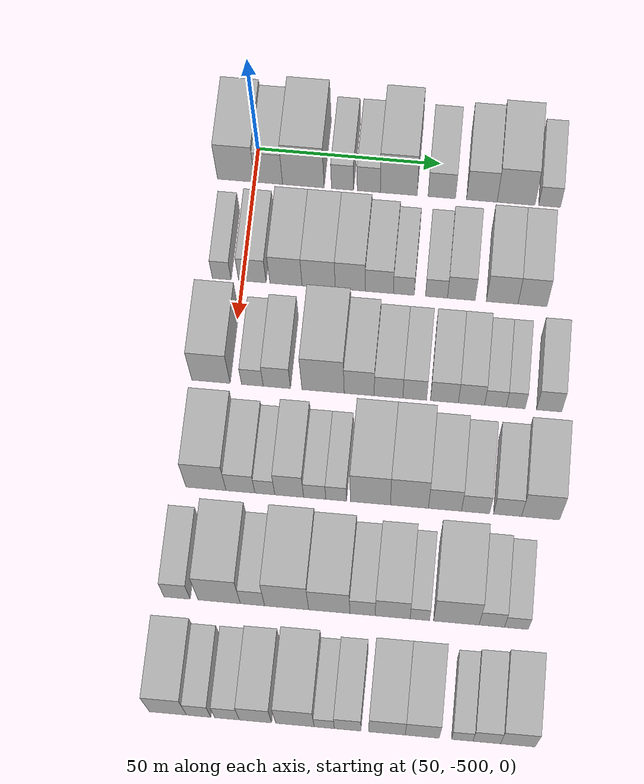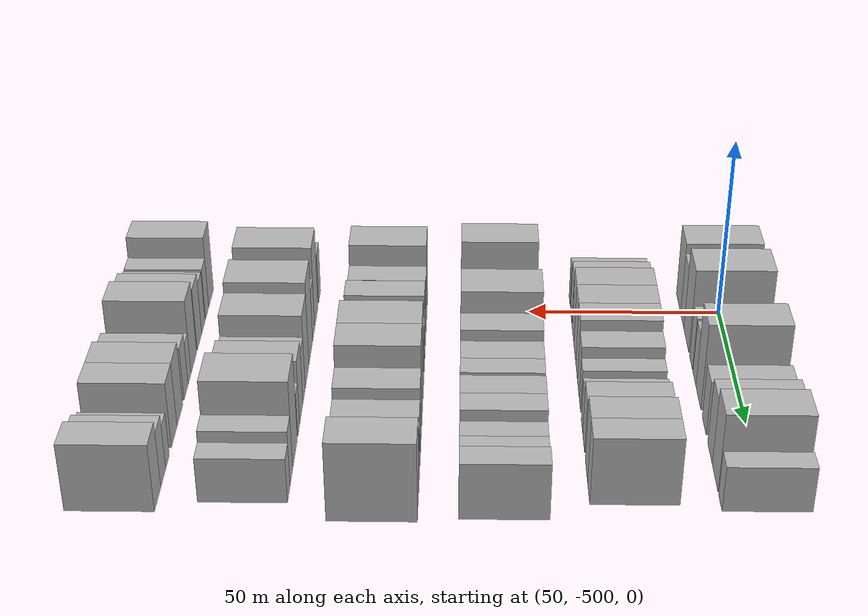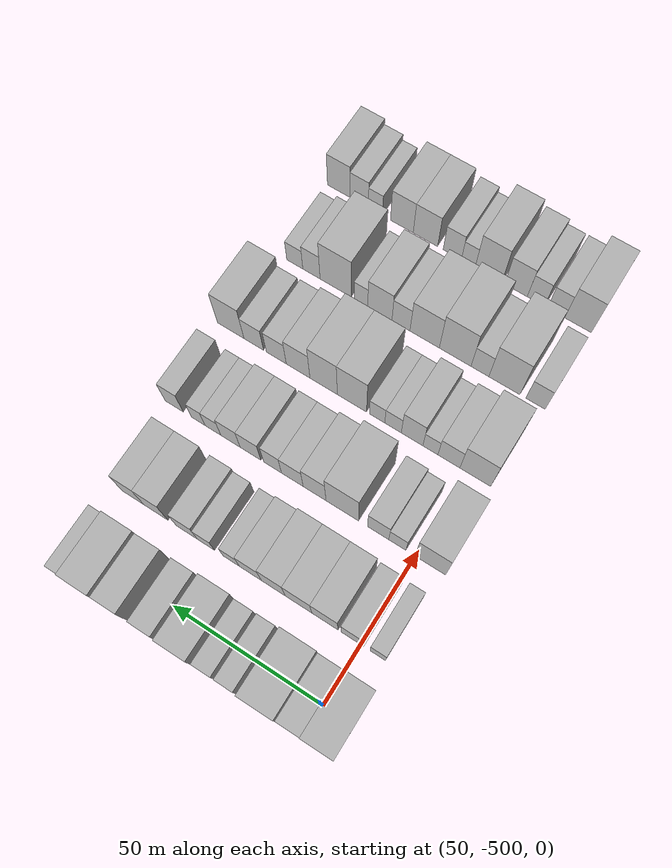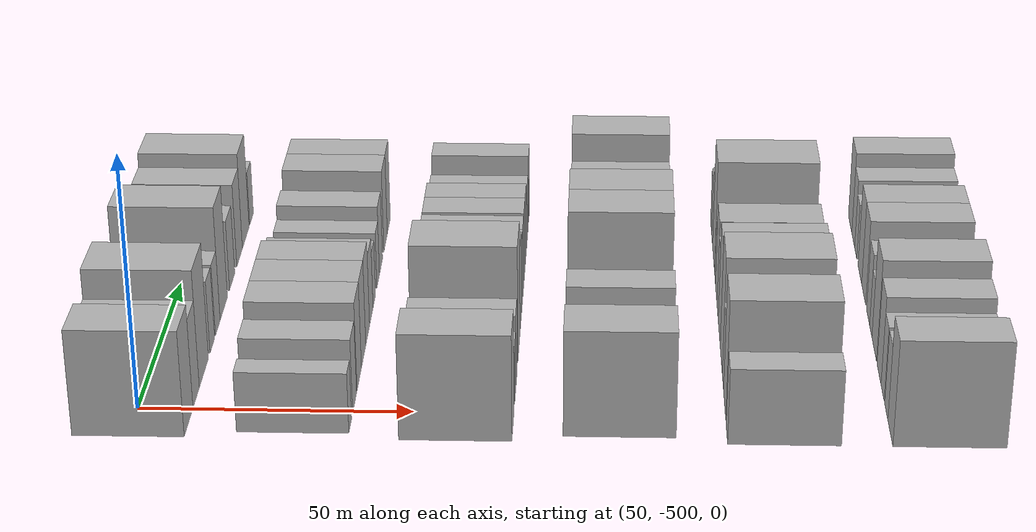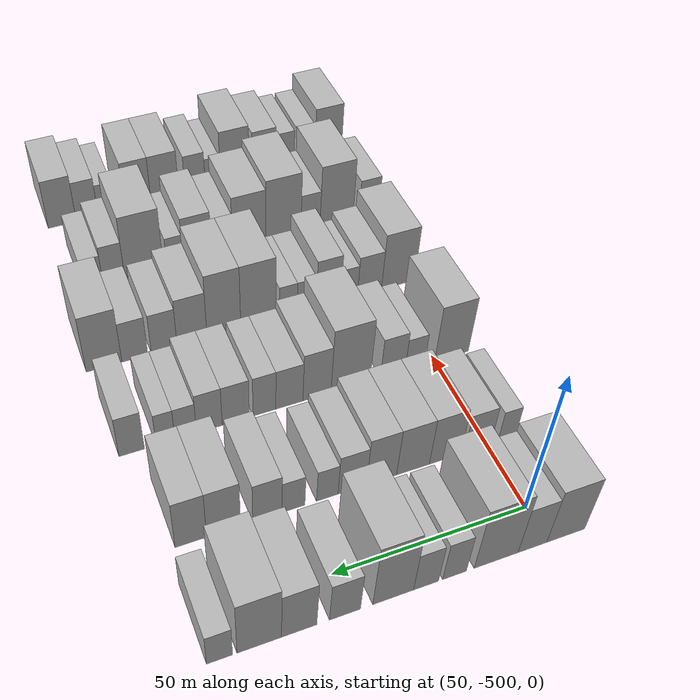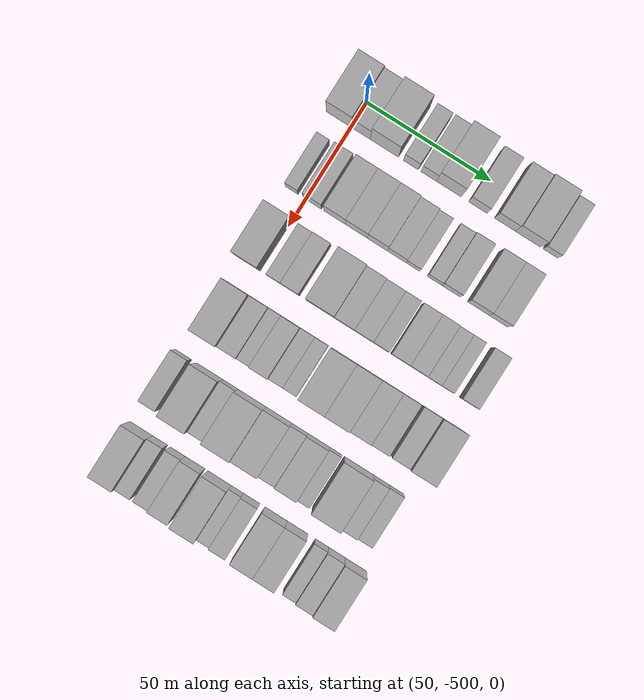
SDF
<sdf version="1.6">
 <world name="default">
  <model name="building_1">
   <static>1</static>
   <pose>50.0000 -504.9154 0 0.000000 0.000000 0.000000</pose>
   <link name="link">
    <pose>0 0 10.50 0 0 0</pose>
    <collision name="collision"><geometry><box><size>20.0000 10.1693 21.0000</size></box></geometry></collision>
    <visual name="visual">
     <cast_shadows>0</cast_shadows>
     <geometry><box><size>20.0000 10.1693 21.0000</size></box></geometry>
     <material>
      <script>
       <uri>model://HANNAS_wall/materials/scripts</uri>
       <uri>model://HANNAS_wall/materials/textures</uri>
       <name>vrc/HANNAS_wall</name>
      </script>
     </material>
    </visual>
   </link>
  </model>
  <model name="building_2">
   <static>1</static>
   <pose>50.0000 -496.0408 0 0.000000 0.000000 0.000000</pose>
   <link name="link">
    <pose>0 0 9.00 0 0 0</pose>
    <collision name="collision"><geometry><box><size>20.0000 7.5799 18.0000</size></box></geometry></collision>
    <visual name="visual">
     <cast_shadows>0</cast_shadows>
     <geometry><box><size>20.0000 7.5799 18.0000</size></box></geometry>
     <material>
      <script>
       <uri>model://HANNAS_wall/materials/scripts</uri>
       <uri>model://HANNAS_wall/materials/textures</uri>
       <name>vrc/HANNAS_wall</name>
      </script>
     </material>
    </visual>
   </link>
  </model>
  <model name="building_3">
   <static>1</static>
   <pose>50.0000 -486.5869 0 0.000000 0.000000 0.000000</pose>
   <link name="link">
    <pose>0 0 12.00 0 0 0</pose>
    <collision name="collision"><geometry><box><size>20.0000 11.3279 24.0000</size></box></geometry></collision>
    <visual name="visual">
     <cast_shadows>0</cast_shadows>
     <geometry><box><size>20.0000 11.3279 24.0000</size></box></geometry>
     <material>
      <script>
       <uri>model://HANNAS_wall/materials/scripts</uri>
       <uri>model://HANNAS_wall/materials/textures</uri>
       <name>vrc/HANNAS_wall</name>
      </script>
     </material>
    </visual>
   </link>
  </model>
  <model name="building_4">
   <static>1</static>
   <pose>50.0000 -475.9145 0 0.000000 0.000000 0.000000</pose>
   <link name="link">
    <pose>0 0 7.50 0 0 0</pose>
    <collision name="collision"><geometry><box><size>20.0000 6.0170 15.0000</size></box></geometry></collision>
    <visual name="visual">
     <cast_shadows>0</cast_shadows>
     <geometry><box><size>20.0000 6.0170 15.0000</size></box></geometry>
     <material>
      <script>
       <uri>model://HANNAS_wall/materials/scripts</uri>
       <uri>model://HANNAS_wall/materials/textures</uri>
       <name>vrc/HANNAS_wall</name>
      </script>
     </material>
    </visual>
   </link>
  </model>
  <model name="building_5">
   <static>1</static>
   <pose>50.0000 -468.7749 0 0.000000 0.000000 0.000000</pose>
   <link name="link">
    <pose>0 0 7.50 0 0 0</pose>
    <collision name="collision"><geometry><box><size>20.0000 6.2623 15.0000</size></box></geometry></collision>
    <visual name="visual">
     <cast_shadows>0</cast_shadows>
     <geometry><box><size>20.0000 6.2623 15.0000</size></box></geometry>
     <material>
      <script>
       <uri>model://HANNAS_wall/materials/scripts</uri>
       <uri>model://HANNAS_wall/materials/textures</uri>
       <name>vrc/HANNAS_wall</name>
      </script>
     </material>
    </visual>
   </link>
  </model>
  <model name="building_6">
   <static>1</static>
   <pose>50.0000 -460.6426 0 0.000000 0.000000 0.000000</pose>
   <link name="link">
    <pose>0 0 12.00 0 0 0</pose>
    <collision name="collision"><geometry><box><size>20.0000 10.0022 24.0000</size></box></geometry></collision>
    <visual name="visual">
     <cast_shadows>0</cast_shadows>
     <geometry><box><size>20.0000 10.0022 24.0000</size></box></geometry>
     <material>
      <script>
       <uri>model://HANNAS_wall/materials/scripts</uri>
       <uri>model://HANNAS_wall/materials/textures</uri>
       <name>vrc/HANNAS_wall</name>
      </script>
     </material>
    </visual>
   </link>
  </model>
  <model name="building_7">
   <static>1</static>
   <pose>50.0000 -448.9311 0 0.000000 0.000000 0.000000</pose>
   <link name="link">
    <pose>0 0 7.50 0 0 0</pose>
    <collision name="collision"><geometry><box><size>20.0000 7.4207 15.0000</size></box></geometry></collision>
    <visual name="visual">
     <cast_shadows>0</cast_shadows>
     <geometry><box><size>20.0000 7.4207 15.0000</size></box></geometry>
     <material>
      <script>
       <uri>model://HANNAS_wall/materials/scripts</uri>
       <uri>model://HANNAS_wall/materials/textures</uri>
       <name>vrc/HANNAS_wall</name>
      </script>
     </material>
    </visual>
   </link>
  </model>
  <model name="building_8">
   <static>1</static>
   <pose>50.0000 -438.0707 0 0.000000 0.000000 0.000000</pose>
   <link name="link">
    <pose>0 0 9.00 0 0 0</pose>
    <collision name="collision"><geometry><box><size>20.0000 8.3002 18.0000</size></box></geometry></collision>
    <visual name="visual">
     <cast_shadows>0</cast_shadows>
     <geometry><box><size>20.0000 8.3002 18.0000</size></box></geometry>
     <material>
      <script>
       <uri>model://HANNAS_wall/materials/scripts</uri>
       <uri>model://HANNAS_wall/materials/textures</uri>
       <name>vrc/HANNAS_wall</name>
      </script>
     </material>
    </visual>
   </link>
  </model>
  <model name="building_9">
   <static>1</static>
   <pose>50.0000 -428.8075 0 0.000000 0.000000 0.000000</pose>
   <link name="link">
    <pose>0 0 10.50 0 0 0</pose>
    <collision name="collision"><geometry><box><size>20.0000 10.2262 21.0000</size></box></geometry></collision>
    <visual name="visual">
     <cast_shadows>0</cast_shadows>
     <geometry><box><size>20.0000 10.2262 21.0000</size></box></geometry>
     <material>
      <script>
       <uri>model://HANNAS_wall/materials/scripts</uri>
       <uri>model://HANNAS_wall/materials/textures</uri>
       <name>vrc/HANNAS_wall</name>
      </script>
     </material>
    </visual>
   </link>
  </model>
  <model name="building_10">
   <static>1</static>
   <pose>50.0000 -419.7451 0 0.000000 0.000000 0.000000</pose>
   <link name="link">
    <pose>0 0 6.00 0 0 0</pose>
    <collision name="collision"><geometry><box><size>20.0000 5.8986 12.0000</size></box></geometry></collision>
    <visual name="visual">
     <cast_shadows>0</cast_shadows>
     <geometry><box><size>20.0000 5.8986 12.0000</size></box></geometry>
     <material>
      <script>
       <uri>model://HANNAS_wall/materials/scripts</uri>
       <uri>model://HANNAS_wall/materials/textures</uri>
       <name>vrc/HANNAS_wall</name>
      </script>
     </material>
    </visual>
   </link>
  </model>
  <model name="building_112">
   <static>1</static>
   <pose>79.0000 -505.4841 0 0.000000 0.000000 0.000000</pose>
   <link name="link">
    <pose>0 0 6.00 0 0 0</pose>
    <collision name="collision"><geometry><box><size>20.0000 5.0317 12.0000</size></box></geometry></collision>
    <visual name="visual">
     <cast_shadows>0</cast_shadows>
     <geometry><box><size>20.0000 5.0317 12.0000</size></box></geometry>
     <material>
      <script>
       <uri>model://HANNAS_wall/materials/scripts</uri>
       <uri>model://HANNAS_wall/materials/textures</uri>
       <name>vrc/HANNAS_wall</name>
      </script>
     </material>
    </visual>
   </link>
  </model>
  <model name="building_113">
   <static>1</static>
   <pose>79.0000 -497.2765 0 0.000000 0.000000 0.000000</pose>
   <link name="link">
    <pose>0 0 7.50 0 0 0</pose>
    <collision name="collision"><geometry><box><size>20.0000 7.3836 15.0000</size></box></geometry></collision>
    <visual name="visual">
     <cast_shadows>0</cast_shadows>
     <geometry><box><size>20.0000 7.3836 15.0000</size></box></geometry>
     <material>
      <script>
       <uri>model://HANNAS_wall/materials/scripts</uri>
       <uri>model://HANNAS_wall/materials/textures</uri>
       <name>vrc/HANNAS_wall</name>
      </script>
     </material>
    </visual>
   </link>
  </model>
  <model name="building_114">
   <static>1</static>
   <pose>79.0000 -488.2732 0 0.000000 0.000000 0.000000</pose>
   <link name="link">
    <pose>0 0 9.00 0 0 0</pose>
    <collision name="collision"><geometry><box><size>20.0000 8.6230 18.0000</size></box></geometry></collision>
    <visual name="visual">
     <cast_shadows>0</cast_shadows>
     <geometry><box><size>20.0000 8.6230 18.0000</size></box></geometry>
     <material>
      <script>
       <uri>model://HANNAS_wall/materials/scripts</uri>
       <uri>model://HANNAS_wall/materials/textures</uri>
       <name>vrc/HANNAS_wall</name>
      </script>
     </material>
    </visual>
   </link>
  </model>
  <model name="building_115">
   <static>1</static>
   <pose>79.0000 -479.5275 0 0.000000 0.000000 0.000000</pose>
   <link name="link">
    <pose>0 0 9.00 0 0 0</pose>
    <collision name="collision"><geometry><box><size>20.0000 8.8684 18.0000</size></box></geometry></collision>
    <visual name="visual">
     <cast_shadows>0</cast_shadows>
     <geometry><box><size>20.0000 8.8684 18.0000</size></box></geometry>
     <material>
      <script>
       <uri>model://HANNAS_wall/materials/scripts</uri>
       <uri>model://HANNAS_wall/materials/textures</uri>
       <name>vrc/HANNAS_wall</name>
      </script>
     </material>
    </visual>
   </link>
  </model>
  <model name="building_116">
   <static>1</static>
   <pose>79.0000 -471.0764 0 0.000000 0.000000 0.000000</pose>
   <link name="link">
    <pose>0 0 9.00 0 0 0</pose>
    <collision name="collision"><geometry><box><size>20.0000 8.0339 18.0000</size></box></geometry></collision>
    <visual name="visual">
     <cast_shadows>0</cast_shadows>
     <geometry><box><size>20.0000 8.0339 18.0000</size></box></geometry>
     <material>
      <script>
       <uri>model://HANNAS_wall/materials/scripts</uri>
       <uri>model://HANNAS_wall/materials/textures</uri>
       <name>vrc/HANNAS_wall</name>
      </script>
     </material>
    </visual>
   </link>
  </model>
  <model name="building_117">
   <static>1</static>
   <pose>79.0000 -463.3272 0 0.000000 0.000000 0.000000</pose>
   <link name="link">
    <pose>0 0 7.50 0 0 0</pose>
    <collision name="collision"><geometry><box><size>20.0000 7.4644 15.0000</size></box></geometry></collision>
    <visual name="visual">
     <cast_shadows>0</cast_shadows>
     <geometry><box><size>20.0000 7.4644 15.0000</size></box></geometry>
     <material>
      <script>
       <uri>model://HANNAS_wall/materials/scripts</uri>
       <uri>model://HANNAS_wall/materials/textures</uri>
       <name>vrc/HANNAS_wall</name>
      </script>
     </material>
    </visual>
   </link>
  </model>
  <model name="building_118">
   <static>1</static>
   <pose>79.0000 -456.8065 0 0.000000 0.000000 0.000000</pose>
   <link name="link">
    <pose>0 0 6.00 0 0 0</pose>
    <collision name="collision"><geometry><box><size>20.0000 5.5770 12.0000</size></box></geometry></collision>
    <visual name="visual">
     <cast_shadows>0</cast_shadows>
     <geometry><box><size>20.0000 5.5770 12.0000</size></box></geometry>
     <material>
      <script>
       <uri>model://HANNAS_wall/materials/scripts</uri>
       <uri>model://HANNAS_wall/materials/textures</uri>
       <name>vrc/HANNAS_wall</name>
      </script>
     </material>
    </visual>
   </link>
  </model>
  <model name="building_119">
   <static>1</static>
   <pose>79.0000 -448.0850 0 0.000000 0.000000 0.000000</pose>
   <link name="link">
    <pose>0 0 6.00 0 0 0</pose>
    <collision name="collision"><geometry><box><size>20.0000 5.8660 12.0000</size></box></geometry></collision>
    <visual name="visual">
     <cast_shadows>0</cast_shadows>
     <geometry><box><size>20.0000 5.8660 12.0000</size></box></geometry>
     <material>
      <script>
       <uri>model://HANNAS_wall/materials/scripts</uri>
       <uri>model://HANNAS_wall/materials/textures</uri>
       <name>vrc/HANNAS_wall</name>
      </script>
     </material>
    </visual>
   </link>
  </model>
  <model name="building_120">
   <static>1</static>
   <pose>79.0000 -441.4732 0 0.000000 0.000000 0.000000</pose>
   <link name="link">
    <pose>0 0 7.50 0 0 0</pose>
    <collision name="collision"><geometry><box><size>20.0000 7.3577 15.0000</size></box></geometry></collision>
    <visual name="visual">
     <cast_shadows>0</cast_shadows>
     <geometry><box><size>20.0000 7.3577 15.0000</size></box></geometry>
     <material>
      <script>
       <uri>model://HANNAS_wall/materials/scripts</uri>
       <uri>model://HANNAS_wall/materials/textures</uri>
       <name>vrc/HANNAS_wall</name>
      </script>
     </material>
    </visual>
   </link>
  </model>
  <model name="building_121">
   <static>1</static>
   <pose>79.0000 -430.5933 0 0.000000 0.000000 0.000000</pose>
   <link name="link">
    <pose>0 0 9.00 0 0 0</pose>
    <collision name="collision"><geometry><box><size>20.0000 8.4021 18.0000</size></box></geometry></collision>
    <visual name="visual">
     <cast_shadows>0</cast_shadows>
     <geometry><box><size>20.0000 8.4021 18.0000</size></box></geometry>
     <material>
      <script>
       <uri>model://HANNAS_wall/materials/scripts</uri>
       <uri>model://HANNAS_wall/materials/textures</uri>
       <name>vrc/HANNAS_wall</name>
      </script>
     </material>
    </visual>
   </link>
  </model>
  <model name="building_122">
   <static>1</static>
   <pose>79.0000 -422.5476 0 0.000000 0.000000 0.000000</pose>
   <link name="link">
    <pose>0 0 9.00 0 0 0</pose>
    <collision name="collision"><geometry><box><size>20.0000 7.6892 18.0000</size></box></geometry></collision>
    <visual name="visual">
     <cast_shadows>0</cast_shadows>
     <geometry><box><size>20.0000 7.6892 18.0000</size></box></geometry>
     <material>
      <script>
       <uri>model://HANNAS_wall/materials/scripts</uri>
       <uri>model://HANNAS_wall/materials/textures</uri>
       <name>vrc/HANNAS_wall</name>
      </script>
     </material>
    </visual>
   </link>
  </model>
  <model name="building_222">
   <static>1</static>
   <pose>108.0000 -504.9560 0 0.000000 0.000000 0.000000</pose>
   <link name="link">
    <pose>0 0 10.50 0 0 0</pose>
    <collision name="collision"><geometry><box><size>20.0000 10.0879 21.0000</size></box></geometry></collision>
    <visual name="visual">
     <cast_shadows>0</cast_shadows>
     <geometry><box><size>20.0000 10.0879 21.0000</size></box></geometry>
     <material>
      <script>
       <uri>model://HANNAS_wall/materials/scripts</uri>
       <uri>model://HANNAS_wall/materials/textures</uri>
       <name>vrc/HANNAS_wall</name>
      </script>
     </material>
    </visual>
   </link>
  </model>
  <model name="building_223">
   <static>1</static>
   <pose>108.0000 -494.0550 0 0.000000 0.000000 0.000000</pose>
   <link name="link">
    <pose>0 0 6.00 0 0 0</pose>
    <collision name="collision"><geometry><box><size>20.0000 5.7141 12.0000</size></box></geometry></collision>
    <visual name="visual">
     <cast_shadows>0</cast_shadows>
     <geometry><box><size>20.0000 5.7141 12.0000</size></box></geometry>
     <material>
      <script>
       <uri>model://HANNAS_wall/materials/scripts</uri>
       <uri>model://HANNAS_wall/materials/textures</uri>
       <name>vrc/HANNAS_wall</name>
      </script>
     </material>
    </visual>
   </link>
  </model>
  <model name="building_224">
   <static>1</static>
   <pose>108.0000 -487.6232 0 0.000000 0.000000 0.000000</pose>
   <link name="link">
    <pose>0 0 7.50 0 0 0</pose>
    <collision name="collision"><geometry><box><size>20.0000 7.1495 15.0000</size></box></geometry></collision>
    <visual name="visual">
     <cast_shadows>0</cast_shadows>
     <geometry><box><size>20.0000 7.1495 15.0000</size></box></geometry>
     <material>
      <script>
       <uri>model://HANNAS_wall/materials/scripts</uri>
       <uri>model://HANNAS_wall/materials/textures</uri>
       <name>vrc/HANNAS_wall</name>
      </script>
     </material>
    </visual>
   </link>
  </model>
  <model name="building_225">
   <static>1</static>
   <pose>108.0000 -475.5007 0 0.000000 0.000000 0.000000</pose>
   <link name="link">
    <pose>0 0 12.00 0 0 0</pose>
    <collision name="collision"><geometry><box><size>20.0000 11.0955 24.0000</size></box></geometry></collision>
    <visual name="visual">
     <cast_shadows>0</cast_shadows>
     <geometry><box><size>20.0000 11.0955 24.0000</size></box></geometry>
     <material>
      <script>
       <uri>model://HANNAS_wall/materials/scripts</uri>
       <uri>model://HANNAS_wall/materials/textures</uri>
       <name>vrc/HANNAS_wall</name>
      </script>
     </material>
    </visual>
   </link>
  </model>
  <model name="building_226">
   <static>1</static>
   <pose>108.0000 -466.0181 0 0.000000 0.000000 0.000000</pose>
   <link name="link">
    <pose>0 0 9.00 0 0 0</pose>
    <collision name="collision"><geometry><box><size>20.0000 7.8696 18.0000</size></box></geometry></collision>
    <visual name="visual">
     <cast_shadows>0</cast_shadows>
     <geometry><box><size>20.0000 7.8696 18.0000</size></box></geometry>
     <material>
      <script>
       <uri>model://HANNAS_wall/materials/scripts</uri>
       <uri>model://HANNAS_wall/materials/textures</uri>
       <name>vrc/HANNAS_wall</name>
      </script>
     </material>
    </visual>
   </link>
  </model>
  <model name="building_227">
   <static>1</static>
   <pose>108.0000 -458.3361 0 0.000000 0.000000 0.000000</pose>
   <link name="link">
    <pose>0 0 7.50 0 0 0</pose>
    <collision name="collision"><geometry><box><size>20.0000 7.4944 15.0000</size></box></geometry></collision>
    <visual name="visual">
     <cast_shadows>0</cast_shadows>
     <geometry><box><size>20.0000 7.4944 15.0000</size></box></geometry>
     <material>
      <script>
       <uri>model://HANNAS_wall/materials/scripts</uri>
       <uri>model://HANNAS_wall/materials/textures</uri>
       <name>vrc/HANNAS_wall</name>
      </script>
     </material>
    </visual>
   </link>
  </model>
  <model name="building_228">
   <static>1</static>
   <pose>108.0000 -451.4857 0 0.000000 0.000000 0.000000</pose>
   <link name="link">
    <pose>0 0 7.50 0 0 0</pose>
    <collision name="collision"><geometry><box><size>20.0000 6.2064 15.0000</size></box></geometry></collision>
    <visual name="visual">
     <cast_shadows>0</cast_shadows>
     <geometry><box><size>20.0000 6.2064 15.0000</size></box></geometry>
     <material>
      <script>
       <uri>model://HANNAS_wall/materials/scripts</uri>
       <uri>model://HANNAS_wall/materials/textures</uri>
       <name>vrc/HANNAS_wall</name>
      </script>
     </material>
    </visual>
   </link>
  </model>
  <model name="building_229">
   <static>1</static>
   <pose>108.0000 -443.7377 0 0.000000 0.000000 0.000000</pose>
   <link name="link">
    <pose>0 0 7.50 0 0 0</pose>
    <collision name="collision"><geometry><box><size>20.0000 7.2896 15.0000</size></box></geometry></collision>
    <visual name="visual">
     <cast_shadows>0</cast_shadows>
     <geometry><box><size>20.0000 7.2896 15.0000</size></box></geometry>
     <material>
      <script>
       <uri>model://HANNAS_wall/materials/scripts</uri>
       <uri>model://HANNAS_wall/materials/textures</uri>
       <name>vrc/HANNAS_wall</name>
      </script>
     </material>
    </visual>
   </link>
  </model>
  <model name="building_230">
   <static>1</static>
   <pose>108.0000 -436.6627 0 0.000000 0.000000 0.000000</pose>
   <link name="link">
    <pose>0 0 7.50 0 0 0</pose>
    <collision name="collision"><geometry><box><size>20.0000 6.8603 15.0000</size></box></geometry></collision>
    <visual name="visual">
     <cast_shadows>0</cast_shadows>
     <geometry><box><size>20.0000 6.8603 15.0000</size></box></geometry>
     <material>
      <script>
       <uri>model://HANNAS_wall/materials/scripts</uri>
       <uri>model://HANNAS_wall/materials/textures</uri>
       <name>vrc/HANNAS_wall</name>
      </script>
     </material>
    </visual>
   </link>
  </model>
  <model name="building_231">
   <static>1</static>
   <pose>108.0000 -430.3982 0 0.000000 0.000000 0.000000</pose>
   <link name="link">
    <pose>0 0 6.00 0 0 0</pose>
    <collision name="collision"><geometry><box><size>20.0000 5.6688 12.0000</size></box></geometry></collision>
    <visual name="visual">
     <cast_shadows>0</cast_shadows>
     <geometry><box><size>20.0000 5.6688 12.0000</size></box></geometry>
     <material>
      <script>
       <uri>model://HANNAS_wall/materials/scripts</uri>
       <uri>model://HANNAS_wall/materials/textures</uri>
       <name>vrc/HANNAS_wall</name>
      </script>
     </material>
    </visual>
   </link>
  </model>
  <model name="building_232">
   <static>1</static>
   <pose>108.0000 -425.1147 0 0.000000 0.000000 0.000000</pose>
   <link name="link">
    <pose>0 0 6.00 0 0 0</pose>
    <collision name="collision"><geometry><box><size>20.0000 4.8982 12.0000</size></box></geometry></collision>
    <visual name="visual">
     <cast_shadows>0</cast_shadows>
     <geometry><box><size>20.0000 4.8982 12.0000</size></box></geometry>
     <material>
      <script>
       <uri>model://HANNAS_wall/materials/scripts</uri>
       <uri>model://HANNAS_wall/materials/textures</uri>
       <name>vrc/HANNAS_wall</name>
      </script>
     </material>
    </visual>
   </link>
  </model>
  <model name="building_233">
   <static>1</static>
   <pose>108.0000 -416.3982 0 0.000000 0.000000 0.000000</pose>
   <link name="link">
    <pose>0 0 7.50 0 0 0</pose>
    <collision name="collision"><geometry><box><size>20.0000 6.5348 15.0000</size></box></geometry></collision>
    <visual name="visual">
     <cast_shadows>0</cast_shadows>
     <geometry><box><size>20.0000 6.5348 15.0000</size></box></geometry>
     <material>
      <script>
       <uri>model://HANNAS_wall/materials/scripts</uri>
       <uri>model://HANNAS_wall/materials/textures</uri>
       <name>vrc/HANNAS_wall</name>
      </script>
     </material>
    </visual>
   </link>
  </model>
  <model name="building_343">
   <static>1</static>
   <pose>137.0000 -502.8252 0 0.000000 0.000000 0.000000</pose>
   <link name="link">
    <pose>0 0 10.50 0 0 0</pose>
    <collision name="collision"><geometry><box><size>20.0000 10.3496 21.0000</size></box></geometry></collision>
    <visual name="visual">
     <cast_shadows>0</cast_shadows>
     <geometry><box><size>20.0000 10.3496 21.0000</size></box></geometry>
     <material>
      <script>
       <uri>model://HANNAS_wall/materials/scripts</uri>
       <uri>model://HANNAS_wall/materials/textures</uri>
       <name>vrc/HANNAS_wall</name>
      </script>
     </material>
    </visual>
   </link>
  </model>
  <model name="building_344">
   <static>1</static>
   <pose>137.0000 -493.9296 0 0.000000 0.000000 0.000000</pose>
   <link name="link">
    <pose>0 0 7.50 0 0 0</pose>
    <collision name="collision"><geometry><box><size>20.0000 7.4416 15.0000</size></box></geometry></collision>
    <visual name="visual">
     <cast_shadows>0</cast_shadows>
     <geometry><box><size>20.0000 7.4416 15.0000</size></box></geometry>
     <material>
      <script>
       <uri>model://HANNAS_wall/materials/scripts</uri>
       <uri>model://HANNAS_wall/materials/textures</uri>
       <name>vrc/HANNAS_wall</name>
      </script>
     </material>
    </visual>
   </link>
  </model>
  <model name="building_345">
   <static>1</static>
   <pose>137.0000 -487.6363 0 0.000000 0.000000 0.000000</pose>
   <link name="link">
    <pose>0 0 6.00 0 0 0</pose>
    <collision name="collision"><geometry><box><size>20.0000 5.1449 12.0000</size></box></geometry></collision>
    <visual name="visual">
     <cast_shadows>0</cast_shadows>
     <geometry><box><size>20.0000 5.1449 12.0000</size></box></geometry>
     <material>
      <script>
       <uri>model://HANNAS_wall/materials/scripts</uri>
       <uri>model://HANNAS_wall/materials/textures</uri>
       <name>vrc/HANNAS_wall</name>
      </script>
     </material>
    </visual>
   </link>
  </model>
  <model name="building_346">
   <static>1</static>
   <pose>137.0000 -481.3527 0 0.000000 0.000000 0.000000</pose>
   <link name="link">
    <pose>0 0 9.00 0 0 0</pose>
    <collision name="collision"><geometry><box><size>20.0000 7.4223 18.0000</size></box></geometry></collision>
    <visual name="visual">
     <cast_shadows>0</cast_shadows>
     <geometry><box><size>20.0000 7.4223 18.0000</size></box></geometry>
     <material>
      <script>
       <uri>model://HANNAS_wall/materials/scripts</uri>
       <uri>model://HANNAS_wall/materials/textures</uri>
       <name>vrc/HANNAS_wall</name>
      </script>
     </material>
    </visual>
   </link>
  </model>
  <model name="building_347">
   <static>1</static>
   <pose>137.0000 -474.7881 0 0.000000 0.000000 0.000000</pose>
   <link name="link">
    <pose>0 0 6.00 0 0 0</pose>
    <collision name="collision"><geometry><box><size>20.0000 5.7070 12.0000</size></box></geometry></collision>
    <visual name="visual">
     <cast_shadows>0</cast_shadows>
     <geometry><box><size>20.0000 5.7070 12.0000</size></box></geometry>
     <material>
      <script>
       <uri>model://HANNAS_wall/materials/scripts</uri>
       <uri>model://HANNAS_wall/materials/textures</uri>
       <name>vrc/HANNAS_wall</name>
      </script>
     </material>
    </visual>
   </link>
  </model>
  <model name="building_348">
   <static>1</static>
   <pose>137.0000 -469.2662 0 0.000000 0.000000 0.000000</pose>
   <link name="link">
    <pose>0 0 6.00 0 0 0</pose>
    <collision name="collision"><geometry><box><size>20.0000 5.3367 12.0000</size></box></geometry></collision>
    <visual name="visual">
     <cast_shadows>0</cast_shadows>
     <geometry><box><size>20.0000 5.3367 12.0000</size></box></geometry>
     <material>
      <script>
       <uri>model://HANNAS_wall/materials/scripts</uri>
       <uri>model://HANNAS_wall/materials/textures</uri>
       <name>vrc/HANNAS_wall</name>
      </script>
     </material>
    </visual>
   </link>
  </model>
  <model name="building_349">
   <static>1</static>
   <pose>137.0000 -460.4674 0 0.000000 0.000000 0.000000</pose>
   <link name="link">
    <pose>0 0 12.00 0 0 0</pose>
    <collision name="collision"><geometry><box><size>20.0000 10.2609 24.0000</size></box></geometry></collision>
    <visual name="visual">
     <cast_shadows>0</cast_shadows>
     <geometry><box><size>20.0000 10.2609 24.0000</size></box></geometry>
     <material>
      <script>
       <uri>model://HANNAS_wall/materials/scripts</uri>
       <uri>model://HANNAS_wall/materials/textures</uri>
       <name>vrc/HANNAS_wall</name>
      </script>
     </material>
    </visual>
   </link>
  </model>
  <model name="building_350">
   <static>1</static>
   <pose>137.0000 -450.4630 0 0.000000 0.000000 0.000000</pose>
   <link name="link">
    <pose>0 0 12.00 0 0 0</pose>
    <collision name="collision"><geometry><box><size>20.0000 9.7478 24.0000</size></box></geometry></collision>
    <visual name="visual">
     <cast_shadows>0</cast_shadows>
     <geometry><box><size>20.0000 9.7478 24.0000</size></box></geometry>
     <material>
      <script>
       <uri>model://HANNAS_wall/materials/scripts</uri>
       <uri>model://HANNAS_wall/materials/textures</uri>
       <name>vrc/HANNAS_wall</name>
      </script>
     </material>
    </visual>
   </link>
  </model>
  <model name="building_351">
   <static>1</static>
   <pose>137.0000 -441.3438 0 0.000000 0.000000 0.000000</pose>
   <link name="link">
    <pose>0 0 9.00 0 0 0</pose>
    <collision name="collision"><geometry><box><size>20.0000 8.4907 18.0000</size></box></geometry></collision>
    <visual name="visual">
     <cast_shadows>0</cast_shadows>
     <geometry><box><size>20.0000 8.4907 18.0000</size></box></geometry>
     <material>
      <script>
       <uri>model://HANNAS_wall/materials/scripts</uri>
       <uri>model://HANNAS_wall/materials/textures</uri>
       <name>vrc/HANNAS_wall</name>
      </script>
     </material>
    </visual>
   </link>
  </model>
  <model name="building_352">
   <static>1</static>
   <pose>137.0000 -433.4943 0 0.000000 0.000000 0.000000</pose>
   <link name="link">
    <pose>0 0 7.50 0 0 0</pose>
    <collision name="collision"><geometry><box><size>20.0000 7.2082 15.0000</size></box></geometry></collision>
    <visual name="visual">
     <cast_shadows>0</cast_shadows>
     <geometry><box><size>20.0000 7.2082 15.0000</size></box></geometry>
     <material>
      <script>
       <uri>model://HANNAS_wall/materials/scripts</uri>
       <uri>model://HANNAS_wall/materials/textures</uri>
       <name>vrc/HANNAS_wall</name>
      </script>
     </material>
    </visual>
   </link>
  </model>
  <model name="building_353">
   <static>1</static>
   <pose>137.0000 -425.3101 0 0.000000 0.000000 0.000000</pose>
   <link name="link">
    <pose>0 0 7.50 0 0 0</pose>
    <collision name="collision"><geometry><box><size>20.0000 7.1602 15.0000</size></box></geometry></collision>
    <visual name="visual">
     <cast_shadows>0</cast_shadows>
     <geometry><box><size>20.0000 7.1602 15.0000</size></box></geometry>
     <material>
      <script>
       <uri>model://HANNAS_wall/materials/scripts</uri>
       <uri>model://HANNAS_wall/materials/textures</uri>
       <name>vrc/HANNAS_wall</name>
      </script>
     </material>
    </visual>
   </link>
  </model>
  <model name="building_354">
   <static>1</static>
   <pose>137.0000 -416.8526 0 0.000000 0.000000 0.000000</pose>
   <link name="link">
    <pose>0 0 10.50 0 0 0</pose>
    <collision name="collision"><geometry><box><size>20.0000 9.7548 21.0000</size></box></geometry></collision>
    <visual name="visual">
     <cast_shadows>0</cast_shadows>
     <geometry><box><size>20.0000 9.7548 21.0000</size></box></geometry>
     <material>
      <script>
       <uri>model://HANNAS_wall/materials/scripts</uri>
       <uri>model://HANNAS_wall/materials/textures</uri>
       <name>vrc/HANNAS_wall</name>
      </script>
     </material>
    </visual>
   </link>
  </model>
  <model name="building_453">
   <static>1</static>
   <pose>166.0000 -506.7027 0 0.000000 0.000000 0.000000</pose>
   <link name="link">
    <pose>0 0 7.50 0 0 0</pose>
    <collision name="collision"><geometry><box><size>20.0000 6.5947 15.0000</size></box></geometry></collision>
    <visual name="visual">
     <cast_shadows>0</cast_shadows>
     <geometry><box><size>20.0000 6.5947 15.0000</size></box></geometry>
     <material>
      <script>
       <uri>model://HANNAS_wall/materials/scripts</uri>
       <uri>model://HANNAS_wall/materials/textures</uri>
       <name>vrc/HANNAS_wall</name>
      </script>
     </material>
    </visual>
   </link>
  </model>
  <model name="building_454">
   <static>1</static>
   <pose>166.0000 -496.0516 0 0.000000 0.000000 0.000000</pose>
   <link name="link">
    <pose>0 0 12.00 0 0 0</pose>
    <collision name="collision"><geometry><box><size>20.0000 10.7075 24.0000</size></box></geometry></collision>
    <visual name="visual">
     <cast_shadows>0</cast_shadows>
     <geometry><box><size>20.0000 10.7075 24.0000</size></box></geometry>
     <material>
      <script>
       <uri>model://HANNAS_wall/materials/scripts</uri>
       <uri>model://HANNAS_wall/materials/textures</uri>
       <name>vrc/HANNAS_wall</name>
      </script>
     </material>
    </visual>
   </link>
  </model>
  <model name="building_455">
   <static>1</static>
   <pose>166.0000 -487.6222 0 0.000000 0.000000 0.000000</pose>
   <link name="link">
    <pose>0 0 7.50 0 0 0</pose>
    <collision name="collision"><geometry><box><size>20.0000 6.1512 15.0000</size></box></geometry></collision>
    <visual name="visual">
     <cast_shadows>0</cast_shadows>
     <geometry><box><size>20.0000 6.1512 15.0000</size></box></geometry>
     <material>
      <script>
       <uri>model://HANNAS_wall/materials/scripts</uri>
       <uri>model://HANNAS_wall/materials/textures</uri>
       <name>vrc/HANNAS_wall</name>
      </script>
     </material>
    </visual>
   </link>
  </model>
  <model name="building_456">
   <static>1</static>
   <pose>166.0000 -478.9849 0 0.000000 0.000000 0.000000</pose>
   <link name="link">
    <pose>0 0 12.00 0 0 0</pose>
    <collision name="collision"><geometry><box><size>20.0000 11.1234 24.0000</size></box></geometry></collision>
    <visual name="visual">
     <cast_shadows>0</cast_shadows>
     <geometry><box><size>20.0000 11.1234 24.0000</size></box></geometry>
     <material>
      <script>
       <uri>model://HANNAS_wall/materials/scripts</uri>
       <uri>model://HANNAS_wall/materials/textures</uri>
       <name>vrc/HANNAS_wall</name>
      </script>
     </material>
    </visual>
   </link>
  </model>
  <model name="building_457">
   <static>1</static>
   <pose>166.0000 -468.2259 0 0.000000 0.000000 0.000000</pose>
   <link name="link">
    <pose>0 0 10.50 0 0 0</pose>
    <collision name="collision"><geometry><box><size>20.0000 10.3947 21.0000</size></box></geometry></collision>
    <visual name="visual">
     <cast_shadows>0</cast_shadows>
     <geometry><box><size>20.0000 10.3947 21.0000</size></box></geometry>
     <material>
      <script>
       <uri>model://HANNAS_wall/materials/scripts</uri>
       <uri>model://HANNAS_wall/materials/textures</uri>
       <name>vrc/HANNAS_wall</name>
      </script>
     </material>
    </visual>
   </link>
  </model>
  <model name="building_458">
   <static>1</static>
   <pose>166.0000 -459.8146 0 0.000000 0.000000 0.000000</pose>
   <link name="link">
    <pose>0 0 7.50 0 0 0</pose>
    <collision name="collision"><geometry><box><size>20.0000 6.4279 15.0000</size></box></geometry></collision>
    <visual name="visual">
     <cast_shadows>0</cast_shadows>
     <geometry><box><size>20.0000 6.4279 15.0000</size></box></geometry>
     <material>
      <script>
       <uri>model://HANNAS_wall/materials/scripts</uri>
       <uri>model://HANNAS_wall/materials/textures</uri>
       <name>vrc/HANNAS_wall</name>
      </script>
     </material>
    </visual>
   </link>
  </model>
  <model name="building_459">
   <static>1</static>
   <pose>166.0000 -452.2361 0 0.000000 0.000000 0.000000</pose>
   <link name="link">
    <pose>0 0 9.00 0 0 0</pose>
    <collision name="collision"><geometry><box><size>20.0000 8.7291 18.0000</size></box></geometry></collision>
    <visual name="visual">
     <cast_shadows>0</cast_shadows>
     <geometry><box><size>20.0000 8.7291 18.0000</size></box></geometry>
     <material>
      <script>
       <uri>model://HANNAS_wall/materials/scripts</uri>
       <uri>model://HANNAS_wall/materials/textures</uri>
       <name>vrc/HANNAS_wall</name>
      </script>
     </material>
    </visual>
   </link>
  </model>
  <model name="building_460">
   <static>1</static>
   <pose>166.0000 -445.4184 0 0.000000 0.000000 0.000000</pose>
   <link name="link">
    <pose>0 0 6.00 0 0 0</pose>
    <collision name="collision"><geometry><box><size>20.0000 4.9062 12.0000</size></box></geometry></collision>
    <visual name="visual">
     <cast_shadows>0</cast_shadows>
     <geometry><box><size>20.0000 4.9062 12.0000</size></box></geometry>
     <material>
      <script>
       <uri>model://HANNAS_wall/materials/scripts</uri>
       <uri>model://HANNAS_wall/materials/textures</uri>
       <name>vrc/HANNAS_wall</name>
      </script>
     </material>
    </visual>
   </link>
  </model>
  <model name="building_461">
   <static>1</static>
   <pose>166.0000 -436.2320 0 0.000000 0.000000 0.000000</pose>
   <link name="link">
    <pose>0 0 12.00 0 0 0</pose>
    <collision name="collision"><geometry><box><size>20.0000 11.4666 24.0000</size></box></geometry></collision>
    <visual name="visual">
     <cast_shadows>0</cast_shadows>
     <geometry><box><size>20.0000 11.4666 24.0000</size></box></geometry>
     <material>
      <script>
       <uri>model://HANNAS_wall/materials/scripts</uri>
       <uri>model://HANNAS_wall/materials/textures</uri>
       <name>vrc/HANNAS_wall</name>
      </script>
     </material>
    </visual>
   </link>
  </model>
  <model name="building_462">
   <static>1</static>
   <pose>166.0000 -427.3108 0 0.000000 0.000000 0.000000</pose>
   <link name="link">
    <pose>0 0 7.50 0 0 0</pose>
    <collision name="collision"><geometry><box><size>20.0000 6.3758 15.0000</size></box></geometry></collision>
    <visual name="visual">
     <cast_shadows>0</cast_shadows>
     <geometry><box><size>20.0000 6.3758 15.0000</size></box></geometry>
     <material>
      <script>
       <uri>model://HANNAS_wall/materials/scripts</uri>
       <uri>model://HANNAS_wall/materials/textures</uri>
       <name>vrc/HANNAS_wall</name>
      </script>
     </material>
    </visual>
   </link>
  </model>
  <model name="building_463">
   <static>1</static>
   <pose>166.0000 -421.1406 0 0.000000 0.000000 0.000000</pose>
   <link name="link">
    <pose>0 0 6.00 0 0 0</pose>
    <collision name="collision"><geometry><box><size>20.0000 5.9647 12.0000</size></box></geometry></collision>
    <visual name="visual">
     <cast_shadows>0</cast_shadows>
     <geometry><box><size>20.0000 5.9647 12.0000</size></box></geometry>
     <material>
      <script>
       <uri>model://HANNAS_wall/materials/scripts</uri>
       <uri>model://HANNAS_wall/materials/textures</uri>
       <name>vrc/HANNAS_wall</name>
      </script>
     </material>
    </visual>
   </link>
  </model>
  <model name="building_572">
   <static>1</static>
   <pose>195.0000 -505.3893 0 0.000000 0.000000 0.000000</pose>
   <link name="link">
    <pose>0 0 10.50 0 0 0</pose>
    <collision name="collision"><geometry><box><size>20.0000 9.2214 21.0000</size></box></geometry></collision>
    <visual name="visual">
     <cast_shadows>0</cast_shadows>
     <geometry><box><size>20.0000 9.2214 21.0000</size></box></geometry>
     <material>
      <script>
       <uri>model://HANNAS_wall/materials/scripts</uri>
       <uri>model://HANNAS_wall/materials/textures</uri>
       <name>vrc/HANNAS_wall</name>
      </script>
     </material>
    </visual>
   </link>
  </model>
  <model name="building_573">
   <static>1</static>
   <pose>195.0000 -497.7585 0 0.000000 0.000000 0.000000</pose>
   <link name="link">
    <pose>0 0 7.50 0 0 0</pose>
    <collision name="collision"><geometry><box><size>20.0000 6.0401 15.0000</size></box></geometry></collision>
    <visual name="visual">
     <cast_shadows>0</cast_shadows>
     <geometry><box><size>20.0000 6.0401 15.0000</size></box></geometry>
     <material>
      <script>
       <uri>model://HANNAS_wall/materials/scripts</uri>
       <uri>model://HANNAS_wall/materials/textures</uri>
       <name>vrc/HANNAS_wall</name>
      </script>
     </material>
    </visual>
   </link>
  </model>
  <model name="building_574">
   <static>1</static>
   <pose>195.0000 -490.7054 0 0.000000 0.000000 0.000000</pose>
   <link name="link">
    <pose>0 0 7.50 0 0 0</pose>
    <collision name="collision"><geometry><box><size>20.0000 6.0662 15.0000</size></box></geometry></collision>
    <visual name="visual">
     <cast_shadows>0</cast_shadows>
     <geometry><box><size>20.0000 6.0662 15.0000</size></box></geometry>
     <material>
      <script>
       <uri>model://HANNAS_wall/materials/scripts</uri>
       <uri>model://HANNAS_wall/materials/textures</uri>
       <name>vrc/HANNAS_wall</name>
      </script>
     </material>
    </visual>
   </link>
  </model>
  <model name="building_575">
   <static>1</static>
   <pose>195.0000 -483.6708 0 0.000000 0.000000 0.000000</pose>
   <link name="link">
    <pose>0 0 9.00 0 0 0</pose>
    <collision name="collision"><geometry><box><size>20.0000 8.0028 18.0000</size></box></geometry></collision>
    <visual name="visual">
     <cast_shadows>0</cast_shadows>
     <geometry><box><size>20.0000 8.0028 18.0000</size></box></geometry>
     <material>
      <script>
       <uri>model://HANNAS_wall/materials/scripts</uri>
       <uri>model://HANNAS_wall/materials/textures</uri>
       <name>vrc/HANNAS_wall</name>
      </script>
     </material>
    </visual>
   </link>
  </model>
  <model name="building_576">
   <static>1</static>
   <pose>195.0000 -473.8997 0 0.000000 0.000000 0.000000</pose>
   <link name="link">
    <pose>0 0 10.50 0 0 0</pose>
    <collision name="collision"><geometry><box><size>20.0000 9.5395 21.0000</size></box></geometry></collision>
    <visual name="visual">
     <cast_shadows>0</cast_shadows>
     <geometry><box><size>20.0000 9.5395 21.0000</size></box></geometry>
     <material>
      <script>
       <uri>model://HANNAS_wall/materials/scripts</uri>
       <uri>model://HANNAS_wall/materials/textures</uri>
       <name>vrc/HANNAS_wall</name>
      </script>
     </material>
    </visual>
   </link>
  </model>
  <model name="building_577">
   <static>1</static>
   <pose>195.0000 -466.6465 0 0.000000 0.000000 0.000000</pose>
   <link name="link">
    <pose>0 0 6.00 0 0 0</pose>
    <collision name="collision"><geometry><box><size>20.0000 4.9668 12.0000</size></box></geometry></collision>
    <visual name="visual">
     <cast_shadows>0</cast_shadows>
     <geometry><box><size>20.0000 4.9668 12.0000</size></box></geometry>
     <material>
      <script>
       <uri>model://HANNAS_wall/materials/scripts</uri>
       <uri>model://HANNAS_wall/materials/textures</uri>
       <name>vrc/HANNAS_wall</name>
      </script>
     </material>
    </visual>
   </link>
  </model>
  <model name="building_578">
   <static>1</static>
   <pose>195.0000 -460.8715 0 0.000000 0.000000 0.000000</pose>
   <link name="link">
    <pose>0 0 7.50 0 0 0</pose>
    <collision name="collision"><geometry><box><size>20.0000 6.5832 15.0000</size></box></geometry></collision>
    <visual name="visual">
     <cast_shadows>0</cast_shadows>
     <geometry><box><size>20.0000 6.5832 15.0000</size></box></geometry>
     <material>
      <script>
       <uri>model://HANNAS_wall/materials/scripts</uri>
       <uri>model://HANNAS_wall/materials/textures</uri>
       <name>vrc/HANNAS_wall</name>
      </script>
     </material>
    </visual>
   </link>
  </model>
  <model name="building_579">
   <static>1</static>
   <pose>195.0000 -451.1063 0 0.000000 0.000000 0.000000</pose>
   <link name="link">
    <pose>0 0 9.00 0 0 0</pose>
    <collision name="collision"><geometry><box><size>20.0000 8.9473 18.0000</size></box></geometry></collision>
    <visual name="visual">
     <cast_shadows>0</cast_shadows>
     <geometry><box><size>20.0000 8.9473 18.0000</size></box></geometry>
     <material>
      <script>
       <uri>model://HANNAS_wall/materials/scripts</uri>
       <uri>model://HANNAS_wall/materials/textures</uri>
       <name>vrc/HANNAS_wall</name>
      </script>
     </material>
    </visual>
   </link>
  </model>
  <model name="building_580">
   <static>1</static>
   <pose>195.0000 -442.4348 0 0.000000 0.000000 0.000000</pose>
   <link name="link">
    <pose>0 0 9.00 0 0 0</pose>
    <collision name="collision"><geometry><box><size>20.0000 8.3956 18.0000</size></box></geometry></collision>
    <visual name="visual">
     <cast_shadows>0</cast_shadows>
     <geometry><box><size>20.0000 8.3956 18.0000</size></box></geometry>
     <material>
      <script>
       <uri>model://HANNAS_wall/materials/scripts</uri>
       <uri>model://HANNAS_wall/materials/textures</uri>
       <name>vrc/HANNAS_wall</name>
      </script>
     </material>
    </visual>
   </link>
  </model>
  <model name="building_581">
   <static>1</static>
   <pose>195.0000 -432.6000 0 0.000000 0.000000 0.000000</pose>
   <link name="link">
    <pose>0 0 6.00 0 0 0</pose>
    <collision name="collision"><geometry><box><size>20.0000 5.2739 12.0000</size></box></geometry></collision>
    <visual name="visual">
     <cast_shadows>0</cast_shadows>
     <geometry><box><size>20.0000 5.2739 12.0000</size></box></geometry>
     <material>
      <script>
       <uri>model://HANNAS_wall/materials/scripts</uri>
       <uri>model://HANNAS_wall/materials/textures</uri>
       <name>vrc/HANNAS_wall</name>
      </script>
     </material>
    </visual>
   </link>
  </model>
  <model name="building_582">
   <static>1</static>
   <pose>195.0000 -426.5780 0 0.000000 0.000000 0.000000</pose>
   <link name="link">
    <pose>0 0 7.50 0 0 0</pose>
    <collision name="collision"><geometry><box><size>20.0000 6.7701 15.0000</size></box></geometry></collision>
    <visual name="visual">
     <cast_shadows>0</cast_shadows>
     <geometry><box><size>20.0000 6.7701 15.0000</size></box></geometry>
     <material>
      <script>
       <uri>model://HANNAS_wall/materials/scripts</uri>
       <uri>model://HANNAS_wall/materials/textures</uri>
       <name>vrc/HANNAS_wall</name>
      </script>
     </material>
    </visual>
   </link>
  </model>
  <model name="building_583">
   <static>1</static>
   <pose>195.0000 -418.9090 0 0.000000 0.000000 0.000000</pose>
   <link name="link">
    <pose>0 0 9.00 0 0 0</pose>
    <collision name="collision"><geometry><box><size>20.0000 8.5679 18.0000</size></box></geometry></collision>
    <visual name="visual">
     <cast_shadows>0</cast_shadows>
     <geometry><box><size>20.0000 8.5679 18.0000</size></box></geometry>
     <material>
      <script>
       <uri>model://HANNAS_wall/materials/scripts</uri>
       <uri>model://HANNAS_wall/materials/textures</uri>
       <name>vrc/HANNAS_wall</name>
      </script>
     </material>
    </visual>
   </link>
  </model>
 </world>
</sdf>
